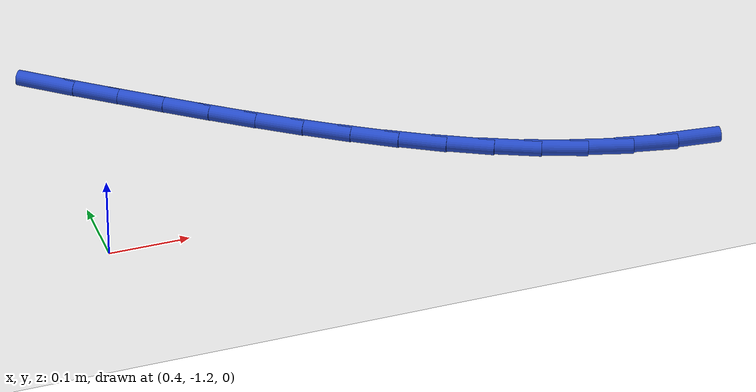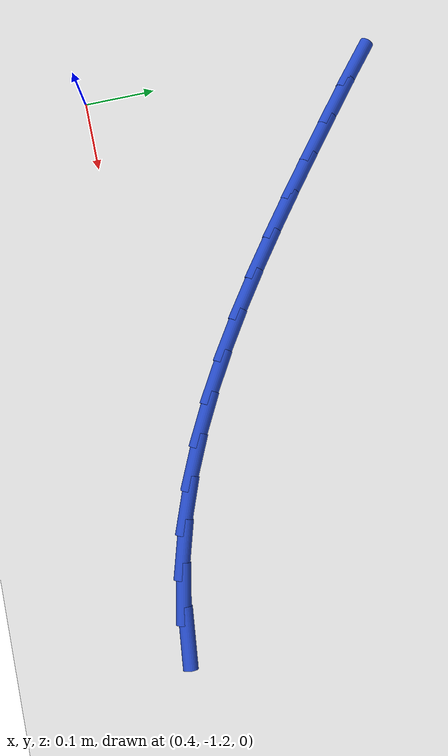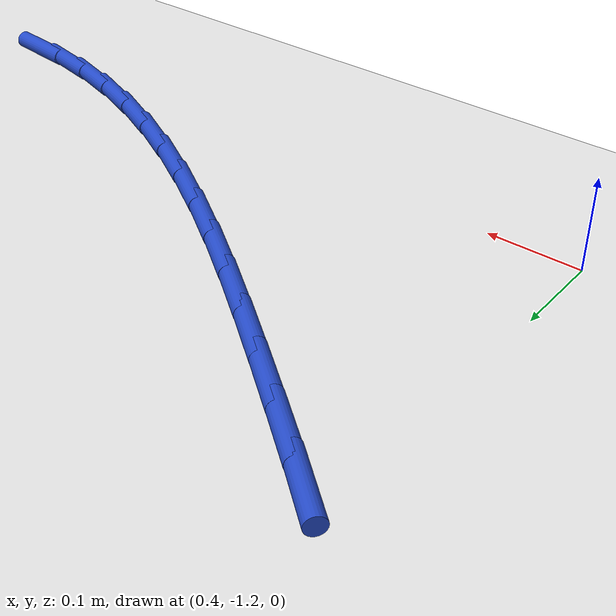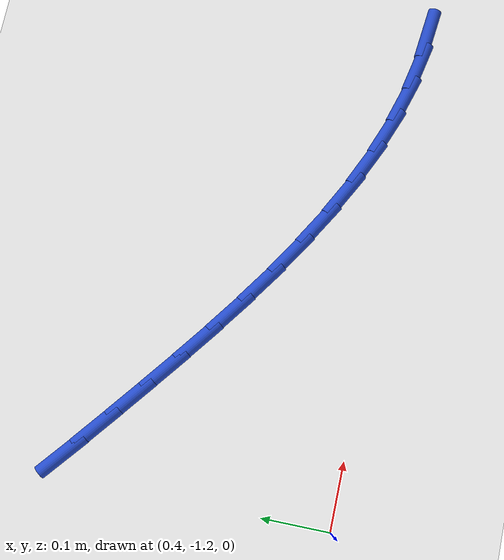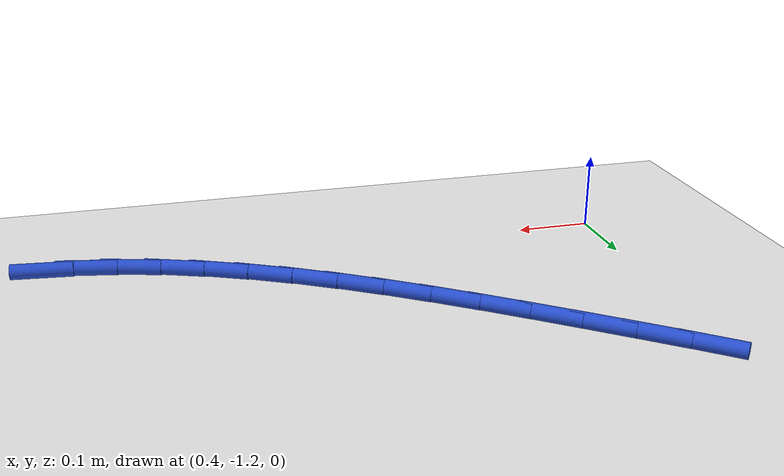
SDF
<sdf version="1.6">
 <world name="default">
  <model name="ground_plane">
   <static>1</static>
   <link name="link">
    <collision name="collision">
     <geometry><plane><normal>0 0 1</normal><size>100 100</size></plane></geometry>
     <surface><friction><ode><mu>100</mu><mu2>50</mu2></ode></friction></surface>
    </collision>
    <visual name="visual">
     <cast_shadows>0</cast_shadows>
     <geometry><plane><normal>0 0 1</normal><size>100 100</size></plane></geometry>
     <material>
      <script><uri>file://media/materials/scripts/gazebo.material</uri><name>Gazebo/WhiteGlow</name></script>
     </material>
    </visual>
   </link>
  </model>
  <model name="line">
   <link name="link_90">
    <pose>1.1547713119163259 -1.2040980963823331 0.01 0 1.57 -0.10635377831035372</pose>
    <collision name="collision">
     <geometry><cylinder><radius>0.01</radius><length>0.08</length></cylinder></geometry>
    </collision>
    <visual name="visual">
     <material>
      <script><name>Gazebo/Blue</name><uri>file://media/materials/scripts/gazebo.material</uri></script>
     </material>
     <geometry><cylinder><radius>0.01</radius><length>0.08</length></cylinder></geometry>
    </visual>
   </link>
   <link name="link_91">
    <pose>1.098699003288554 -1.19811200766193 0.01 0 1.57 -0.20170207067125653</pose>
    <collision name="collision">
     <geometry><cylinder><radius>0.01</radius><length>0.08</length></cylinder></geometry>
    </collision>
    <visual name="visual">
     <material>
      <script><name>Gazebo/Blue</name><uri>file://media/materials/scripts/gazebo.material</uri></script>
     </material>
     <geometry><cylinder><radius>0.01</radius><length>0.08</length></cylinder></geometry>
    </visual>
   </link>
   <link name="link_92">
    <pose>1.0433054208452004 -1.1867849805830335 0.01 0 1.57 -0.28771246986749305</pose>
    <collision name="collision">
     <geometry><cylinder><radius>0.01</radius><length>0.08</length></cylinder></geometry>
    </collision>
    <visual name="visual">
     <material>
      <script><name>Gazebo/Blue</name><uri>file://media/materials/scripts/gazebo.material</uri></script>
     </material>
     <geometry><cylinder><radius>0.01</radius><length>0.08</length></cylinder></geometry>
    </visual>
   </link>
   <link name="link_93">
    <pose>0.9885809898160554 -1.1705907492884258 0.01 0 1.57 -0.36371083866101545</pose>
    <collision name="collision">
     <geometry><cylinder><radius>0.01</radius><length>0.08</length></cylinder></geometry>
    </collision>
    <visual name="visual">
     <material>
      <script><name>Gazebo/Blue</name><uri>file://media/materials/scripts/gazebo.material</uri></script>
     </material>
     <geometry><cylinder><radius>0.01</radius><length>0.08</length></cylinder></geometry>
    </visual>
   </link>
   <link name="link_94">
    <pose>0.9345149840563101 -1.1500107737686445 0.01 0 1.57 -0.4297757260308121</pose>
    <collision name="collision">
     <geometry><cylinder><radius>0.01</radius><length>0.08</length></cylinder></geometry>
    </collision>
    <visual name="visual">
     <material>
      <script><name>Gazebo/Blue</name><uri>file://media/materials/scripts/gazebo.material</uri></script>
     </material>
     <geometry><cylinder><radius>0.01</radius><length>0.08</length></cylinder></geometry>
    </visual>
   </link>
   <link name="link_95">
    <pose>0.8810966774211528 -1.1255265140142259 0.01 0 1.57 -0.486366708176887</pose>
    <collision name="collision">
     <geometry><cylinder><radius>0.01</radius><length>0.08</length></cylinder></geometry>
    </collision>
    <visual name="visual">
     <material>
      <script><name>Gazebo/Blue</name><uri>file://media/materials/scripts/gazebo.material</uri></script>
     </material>
     <geometry><cylinder><radius>0.01</radius><length>0.08</length></cylinder></geometry>
    </visual>
   </link>
   <link name="link_96">
    <pose>0.8283153437657723 -1.0976194300157074 0.01 0 1.57 -0.5341277959592862</pose>
    <collision name="collision">
     <geometry><cylinder><radius>0.01</radius><length>0.08</length></cylinder></geometry>
    </collision>
    <visual name="visual">
     <material>
      <script><name>Gazebo/Blue</name><uri>file://media/materials/scripts/gazebo.material</uri></script>
     </material>
     <geometry><cylinder><radius>0.01</radius><length>0.08</length></cylinder></geometry>
    </visual>
   </link>
   <link name="link_97">
    <pose>0.7761602569453592 -1.066770981763626 0.01 0 1.57 -0.5737469238422459</pose>
    <collision name="collision">
     <geometry><cylinder><radius>0.01</radius><length>0.08</length></cylinder></geometry>
    </collision>
    <visual name="visual">
     <material>
      <script><name>Gazebo/Blue</name><uri>file://media/materials/scripts/gazebo.material</uri></script>
     </material>
     <geometry><cylinder><radius>0.01</radius><length>0.08</length></cylinder></geometry>
    </visual>
   </link>
   <link name="link_98">
    <pose>0.724620690815102 -1.033462629248519 0.01 0 1.57 -0.6058666022338732</pose>
    <collision name="collision">
     <geometry><cylinder><radius>0.01</radius><length>0.08</length></cylinder></geometry>
    </collision>
    <visual name="visual">
     <material>
      <script><name>Gazebo/Blue</name><uri>file://media/materials/scripts/gazebo.material</uri></script>
     </material>
     <geometry><cylinder><radius>0.01</radius><length>0.08</length></cylinder></geometry>
    </visual>
   </link>
   <link name="link_99">
    <pose>0.6736859192301901 -0.9981758324609229 0.01 0 1.57 -0.6310320445805224</pose>
    <collision name="collision">
     <geometry><cylinder><radius>0.01</radius><length>0.08</length></cylinder></geometry>
    </collision>
    <visual name="visual">
     <material>
      <script><name>Gazebo/Blue</name><uri>file://media/materials/scripts/gazebo.material</uri></script>
     </material>
     <geometry><cylinder><radius>0.01</radius><length>0.08</length></cylinder></geometry>
    </visual>
   </link>
   <link name="link_100">
    <pose>0.6233452160458123 -0.9613920513913744 0.01 0 1.57 -0.6496629068338858</pose>
    <collision name="collision">
     <geometry><cylinder><radius>0.01</radius><length>0.08</length></cylinder></geometry>
    </collision>
    <visual name="visual">
     <material>
      <script><name>Gazebo/Blue</name><uri>file://media/materials/scripts/gazebo.material</uri></script>
     </material>
     <geometry><cylinder><radius>0.01</radius><length>0.08</length></cylinder></geometry>
    </visual>
   </link>
   <link name="link_101">
    <pose>0.5735878551171587 -0.9235927460304117 0.01 0 1.57 -0.6620377070897814</pose>
    <collision name="collision">
     <geometry><cylinder><radius>0.01</radius><length>0.08</length></cylinder></geometry>
    </collision>
    <visual name="visual">
     <material>
      <script><name>Gazebo/Blue</name><uri>file://media/materials/scripts/gazebo.material</uri></script>
     </material>
     <geometry><cylinder><radius>0.01</radius><length>0.08</length></cylinder></geometry>
    </visual>
   </link>
   <link name="link_102">
    <pose>0.5244031102994183 -0.8852593763685711 0.01 0 1.57 -0.6685707684976181</pose>
    <collision name="collision">
     <geometry><cylinder><radius>0.01</radius><length>0.08</length></cylinder></geometry>
    </collision>
    <visual name="visual">
     <material>
      <script><name>Gazebo/Blue</name><uri>file://media/materials/scripts/gazebo.material</uri></script>
     </material>
     <geometry><cylinder><radius>0.01</radius><length>0.08</length></cylinder></geometry>
    </visual>
   </link>
   <link name="link_103">
    <pose>0.4757875692765757 -0.8468564781394905 0.01 0 1.57 -0.6759247187518129</pose>
    <collision name="collision">
     <geometry><cylinder><radius>0.01</radius><length>0.08</length></cylinder></geometry>
    </collision>
    <visual name="visual">
     <material>
      <script><name>Gazebo/Blue</name><uri>file://media/materials/scripts/gazebo.material</uri></script>
     </material>
     <geometry><cylinder><radius>0.01</radius><length>0.08</length></cylinder></geometry>
    </visual>
   </link>
   <link name="link_104">
    <pose>0.42790639764246247 -0.8084584964780733 0.01 0 1.57 -0.6909247137794428</pose>
    <collision name="collision">
     <geometry><cylinder><radius>0.01</radius><length>0.08</length></cylinder></geometry>
    </collision>
    <visual name="visual">
     <material>
      <script><name>Gazebo/Blue</name><uri>file://media/materials/scripts/gazebo.material</uri></script>
     </material>
     <geometry><cylinder><radius>0.01</radius><length>0.08</length></cylinder></geometry>
    </visual>
   </link>
  </model>
 </world>
</sdf>
